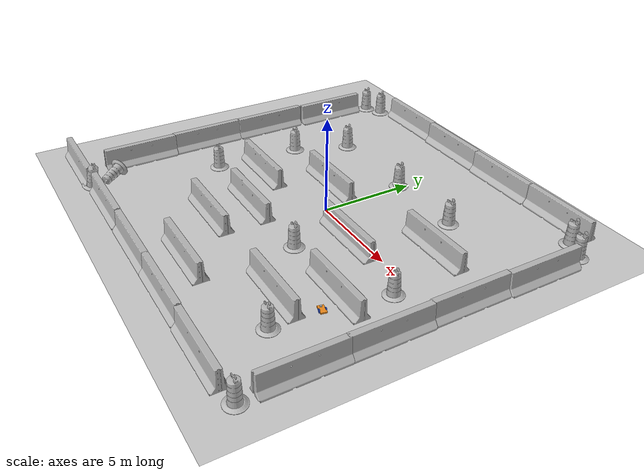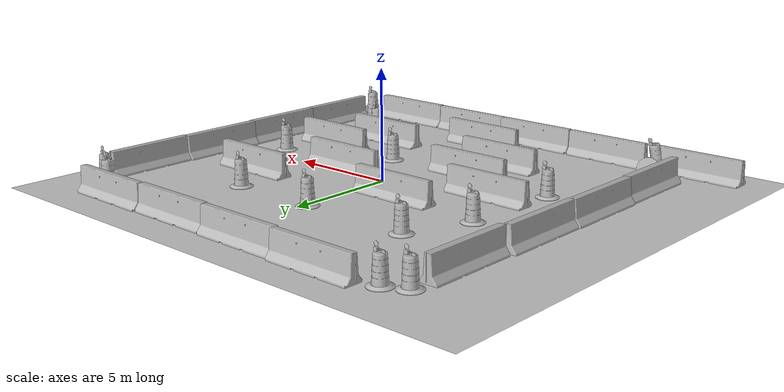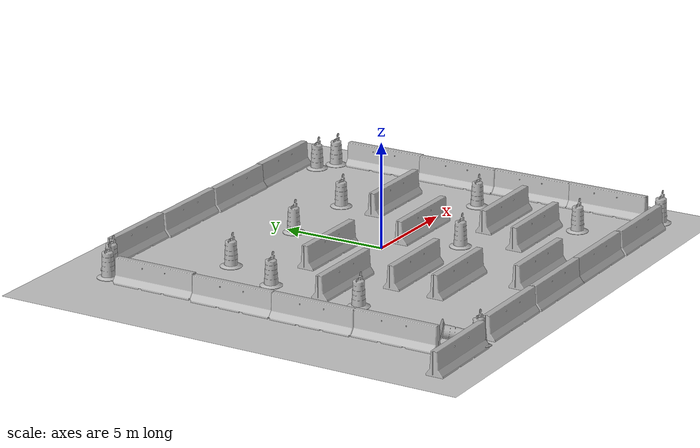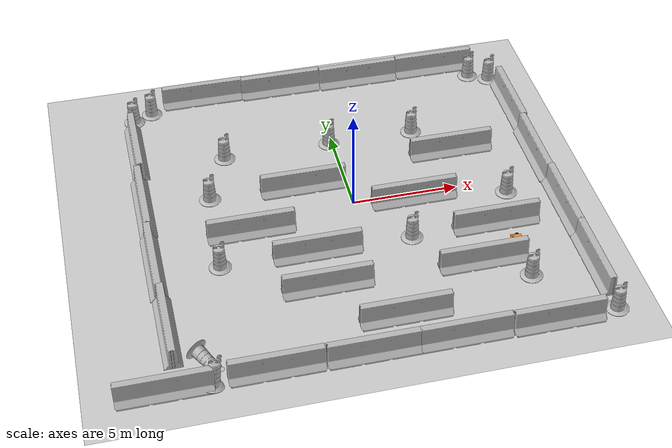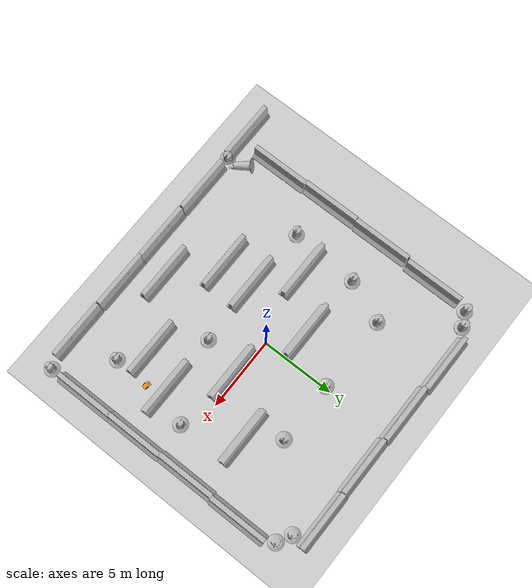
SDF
<sdf version="1.7">
 <world name="default">
  <light name="sun" type="directional">
   <pose>0 0 10 0 -0 0</pose>
   <diffuse>0.8 0.8 0.8 1</diffuse>
   <specular>0.2 0.2 0.2 1</specular>
   <attenuation>
    <range>1000</range>
    <constant>0.9</constant>
    <linear>0.01</linear>
    <quadratic>0.001</quadratic>
   </attenuation>
   <direction>-0.5 0.1 -0.9</direction>
   <spot><inner_angle>0</inner_angle><outer_angle>0</outer_angle><falloff>0</falloff></spot>
  </light>
  <model name="ground_plane">
   <static>1</static>
   <link name="link">
    <collision name="collision">
     <geometry><plane><normal>0 0 1</normal><size>100 100</size></plane></geometry>
     <surface><friction><ode><mu>100</mu><mu2>50</mu2></ode></friction></surface>
    </collision>
    <visual name="visual">
     <cast_shadows>0</cast_shadows>
     <geometry><plane><normal>0 0 1</normal><size>100 100</size></plane></geometry>
     <material>
      <script><uri>file://media/materials/scripts/gazebo.material</uri><name>Gazebo/Grey</name></script>
     </material>
    </visual>
   </link>
  </model>
  <gravity>0 0 -9.8</gravity>
  <magnetic_field>6e-06 2.3e-05 -4.2e-05</magnetic_field>
  <atmosphere type="adiabatic"/>
  <physics name="default_physics" default="0" type="ode">
   <max_step_size>0.001</max_step_size>
   <real_time_factor>1</real_time_factor>
   <real_time_update_rate>1000</real_time_update_rate>
  </physics>
  <scene><ambient>0.4 0.4 0.4 1</ambient><background>0.7 0.7 0.7 1</background><shadows>1</shadows></scene>
  <spherical_coordinates>
   <surface_model>EARTH_WGS84</surface_model>
   <latitude_deg>0</latitude_deg>
   <longitude_deg>0</longitude_deg>
   <elevation>0</elevation>
   <heading_deg>0</heading_deg>
  </spherical_coordinates>
  <model name="jersey_barrier">
   <static>1</static>
   <link name="link">
    <visual name="visual">
     <geometry><mesh><uri>model://jersey_barrier/meshes/jersey_barrier.dae</uri></mesh></geometry>
    </visual>
    <collision name="upright">
     <pose>0 0 0.5715 0 -0 0</pose>
     <geometry><box><size>4.06542 0.3063 1.143</size></box></geometry>
    </collision>
    <collision name="base">
     <pose>0 0 0.032258 0 -0 0</pose>
     <geometry><box><size>4.06542 0.8107 0.064516</size></box></geometry>
    </collision>
    <collision name="base2">
     <pose>0 0 0.1 0 -0 0</pose>
     <geometry><box><size>4.06542 0.65 0.1</size></box></geometry>
    </collision>
    <collision name="base3">
     <pose>0 0 0.2 0 -0 0</pose>
     <geometry><box><size>4.06542 0.5 0.1</size></box></geometry>
    </collision>
    <collision name="left-angle">
     <pose>0 -0.224 0.2401 0.9 -0 0</pose>
     <geometry><box><size>4.06542 0.5 0.064516</size></box></geometry>
    </collision>
    <collision name="right-angle">
     <pose>0 0.224 0.2401 -0.9 0 0</pose>
     <geometry><box><size>4.06542 0.5 0.064516</size></box></geometry>
    </collision>
   </link>
   <pose>-5.65677 9.4608 0 0 -0 0</pose>
  </model>
  <model name="jersey_barrier_clone">
   <static>1</static>
   <link name="link">
    <visual name="visual">
     <geometry><mesh><uri>model://jersey_barrier/meshes/jersey_barrier.dae</uri></mesh></geometry>
    </visual>
    <collision name="upright">
     <pose>0 0 0.5715 0 -0 0</pose>
     <geometry><box><size>4.06542 0.3063 1.143</size></box></geometry>
    </collision>
    <collision name="base">
     <pose>0 0 0.032258 0 -0 0</pose>
     <geometry><box><size>4.06542 0.8107 0.064516</size></box></geometry>
    </collision>
    <collision name="base2">
     <pose>0 0 0.1 0 -0 0</pose>
     <geometry><box><size>4.06542 0.65 0.1</size></box></geometry>
    </collision>
    <collision name="base3">
     <pose>0 0 0.2 0 -0 0</pose>
     <geometry><box><size>4.06542 0.5 0.1</size></box></geometry>
    </collision>
    <collision name="left-angle">
     <pose>0 -0.224 0.2401 0.9 -0 0</pose>
     <geometry><box><size>4.06542 0.5 0.064516</size></box></geometry>
    </collision>
    <collision name="right-angle">
     <pose>0 0.224 0.2401 -0.9 0 0</pose>
     <geometry><box><size>4.06542 0.5 0.064516</size></box></geometry>
    </collision>
   </link>
   <pose>-1.65987 9.36075 0 0 -0 0</pose>
  </model>
  <model name="jersey_barrier_clone_0">
   <static>1</static>
   <link name="link">
    <visual name="visual">
     <geometry><mesh><uri>model://jersey_barrier/meshes/jersey_barrier.dae</uri></mesh></geometry>
    </visual>
    <collision name="upright">
     <pose>0 0 0.5715 0 -0 0</pose>
     <geometry><box><size>4.06542 0.3063 1.143</size></box></geometry>
    </collision>
    <collision name="base">
     <pose>0 0 0.032258 0 -0 0</pose>
     <geometry><box><size>4.06542 0.8107 0.064516</size></box></geometry>
    </collision>
    <collision name="base2">
     <pose>0 0 0.1 0 -0 0</pose>
     <geometry><box><size>4.06542 0.65 0.1</size></box></geometry>
    </collision>
    <collision name="base3">
     <pose>0 0 0.2 0 -0 0</pose>
     <geometry><box><size>4.06542 0.5 0.1</size></box></geometry>
    </collision>
    <collision name="left-angle">
     <pose>0 -0.224 0.2401 0.9 -0 0</pose>
     <geometry><box><size>4.06542 0.5 0.064516</size></box></geometry>
    </collision>
    <collision name="right-angle">
     <pose>0 0.224 0.2401 -0.9 0 0</pose>
     <geometry><box><size>4.06542 0.5 0.064516</size></box></geometry>
    </collision>
   </link>
   <pose>2.39773 9.29085 0 0 -0 0</pose>
  </model>
  <model name="jersey_barrier_clone_1">
   <static>1</static>
   <link name="link">
    <visual name="visual">
     <geometry><mesh><uri>model://jersey_barrier/meshes/jersey_barrier.dae</uri></mesh></geometry>
    </visual>
    <collision name="upright">
     <pose>0 0 0.5715 0 -0 0</pose>
     <geometry><box><size>4.06542 0.3063 1.143</size></box></geometry>
    </collision>
    <collision name="base">
     <pose>0 0 0.032258 0 -0 0</pose>
     <geometry><box><size>4.06542 0.8107 0.064516</size></box></geometry>
    </collision>
    <collision name="base2">
     <pose>0 0 0.1 0 -0 0</pose>
     <geometry><box><size>4.06542 0.65 0.1</size></box></geometry>
    </collision>
    <collision name="base3">
     <pose>0 0 0.2 0 -0 0</pose>
     <geometry><box><size>4.06542 0.5 0.1</size></box></geometry>
    </collision>
    <collision name="left-angle">
     <pose>0 -0.224 0.2401 0.9 -0 0</pose>
     <geometry><box><size>4.06542 0.5 0.064516</size></box></geometry>
    </collision>
    <collision name="right-angle">
     <pose>0 0.224 0.2401 -0.9 0 0</pose>
     <geometry><box><size>4.06542 0.5 0.064516</size></box></geometry>
    </collision>
   </link>
   <pose>6.45464 9.33993 0 0 -0 0</pose>
  </model>
  <model name="jersey_barrier_clone_3">
   <static>1</static>
   <link name="link">
    <visual name="visual">
     <geometry><mesh><uri>model://jersey_barrier/meshes/jersey_barrier.dae</uri></mesh></geometry>
    </visual>
    <collision name="upright">
     <pose>0 0 0.5715 0 -0 0</pose>
     <geometry><box><size>4.06542 0.3063 1.143</size></box></geometry>
    </collision>
    <collision name="base">
     <pose>0 0 0.032258 0 -0 0</pose>
     <geometry><box><size>4.06542 0.8107 0.064516</size></box></geometry>
    </collision>
    <collision name="base2">
     <pose>0 0 0.1 0 -0 0</pose>
     <geometry><box><size>4.06542 0.65 0.1</size></box></geometry>
    </collision>
    <collision name="base3">
     <pose>0 0 0.2 0 -0 0</pose>
     <geometry><box><size>4.06542 0.5 0.1</size></box></geometry>
    </collision>
    <collision name="left-angle">
     <pose>0 -0.224 0.2401 0.9 -0 0</pose>
     <geometry><box><size>4.06542 0.5 0.064516</size></box></geometry>
    </collision>
    <collision name="right-angle">
     <pose>0 0.224 0.2401 -0.9 0 0</pose>
     <geometry><box><size>4.06542 0.5 0.064516</size></box></geometry>
    </collision>
   </link>
   <pose>9.44656 5.35522 0 0 0 -1.56865</pose>
  </model>
  <model name="jersey_barrier_clone_3_clone">
   <static>1</static>
   <link name="link">
    <visual name="visual">
     <geometry><mesh><uri>model://jersey_barrier/meshes/jersey_barrier.dae</uri></mesh></geometry>
    </visual>
    <collision name="upright">
     <pose>0 0 0.5715 0 -0 0</pose>
     <geometry><box><size>4.06542 0.3063 1.143</size></box></geometry>
    </collision>
    <collision name="base">
     <pose>0 0 0.032258 0 -0 0</pose>
     <geometry><box><size>4.06542 0.8107 0.064516</size></box></geometry>
    </collision>
    <collision name="base2">
     <pose>0 0 0.1 0 -0 0</pose>
     <geometry><box><size>4.06542 0.65 0.1</size></box></geometry>
    </collision>
    <collision name="base3">
     <pose>0 0 0.2 0 -0 0</pose>
     <geometry><box><size>4.06542 0.5 0.1</size></box></geometry>
    </collision>
    <collision name="left-angle">
     <pose>0 -0.224 0.2401 0.9 -0 0</pose>
     <geometry><box><size>4.06542 0.5 0.064516</size></box></geometry>
    </collision>
    <collision name="right-angle">
     <pose>0 0.224 0.2401 -0.9 0 0</pose>
     <geometry><box><size>4.06542 0.5 0.064516</size></box></geometry>
    </collision>
   </link>
   <pose>9.3727 1.33119 0 0 0 -1.56865</pose>
  </model>
  <model name="jersey_barrier_clone_3_clone_0">
   <static>1</static>
   <link name="link">
    <visual name="visual">
     <geometry><mesh><uri>model://jersey_barrier/meshes/jersey_barrier.dae</uri></mesh></geometry>
    </visual>
    <collision name="upright">
     <pose>0 0 0.5715 0 -0 0</pose>
     <geometry><box><size>4.06542 0.3063 1.143</size></box></geometry>
    </collision>
    <collision name="base">
     <pose>0 0 0.032258 0 -0 0</pose>
     <geometry><box><size>4.06542 0.8107 0.064516</size></box></geometry>
    </collision>
    <collision name="base2">
     <pose>0 0 0.1 0 -0 0</pose>
     <geometry><box><size>4.06542 0.65 0.1</size></box></geometry>
    </collision>
    <collision name="base3">
     <pose>0 0 0.2 0 -0 0</pose>
     <geometry><box><size>4.06542 0.5 0.1</size></box></geometry>
    </collision>
    <collision name="left-angle">
     <pose>0 -0.224 0.2401 0.9 -0 0</pose>
     <geometry><box><size>4.06542 0.5 0.064516</size></box></geometry>
    </collision>
    <collision name="right-angle">
     <pose>0 0.224 0.2401 -0.9 0 0</pose>
     <geometry><box><size>4.06542 0.5 0.064516</size></box></geometry>
    </collision>
   </link>
   <pose>9.4315 -2.6268 0 0 0 -1.56865</pose>
  </model>
  <model name="jersey_barrier_clone_3_clone_1">
   <static>1</static>
   <link name="link">
    <visual name="visual">
     <geometry><mesh><uri>model://jersey_barrier/meshes/jersey_barrier.dae</uri></mesh></geometry>
    </visual>
    <collision name="upright">
     <pose>0 0 0.5715 0 -0 0</pose>
     <geometry><box><size>4.06542 0.3063 1.143</size></box></geometry>
    </collision>
    <collision name="base">
     <pose>0 0 0.032258 0 -0 0</pose>
     <geometry><box><size>4.06542 0.8107 0.064516</size></box></geometry>
    </collision>
    <collision name="base2">
     <pose>0 0 0.1 0 -0 0</pose>
     <geometry><box><size>4.06542 0.65 0.1</size></box></geometry>
    </collision>
    <collision name="base3">
     <pose>0 0 0.2 0 -0 0</pose>
     <geometry><box><size>4.06542 0.5 0.1</size></box></geometry>
    </collision>
    <collision name="left-angle">
     <pose>0 -0.224 0.2401 0.9 -0 0</pose>
     <geometry><box><size>4.06542 0.5 0.064516</size></box></geometry>
    </collision>
    <collision name="right-angle">
     <pose>0 0.224 0.2401 -0.9 0 0</pose>
     <geometry><box><size>4.06542 0.5 0.064516</size></box></geometry>
    </collision>
   </link>
   <pose>9.44969 -6.53485 0 0 0 -1.56865</pose>
  </model>
  <model name="jersey_barrier_clone_2_clone">
   <static>1</static>
   <link name="link">
    <visual name="visual">
     <geometry><mesh><uri>model://jersey_barrier/meshes/jersey_barrier.dae</uri></mesh></geometry>
    </visual>
    <collision name="upright">
     <pose>0 0 0.5715 0 -0 0</pose>
     <geometry><box><size>4.06542 0.3063 1.143</size></box></geometry>
    </collision>
    <collision name="base">
     <pose>0 0 0.032258 0 -0 0</pose>
     <geometry><box><size>4.06542 0.8107 0.064516</size></box></geometry>
    </collision>
    <collision name="base2">
     <pose>0 0 0.1 0 -0 0</pose>
     <geometry><box><size>4.06542 0.65 0.1</size></box></geometry>
    </collision>
    <collision name="base3">
     <pose>0 0 0.2 0 -0 0</pose>
     <geometry><box><size>4.06542 0.5 0.1</size></box></geometry>
    </collision>
    <collision name="left-angle">
     <pose>0 -0.224 0.2401 0.9 -0 0</pose>
     <geometry><box><size>4.06542 0.5 0.064516</size></box></geometry>
    </collision>
    <collision name="right-angle">
     <pose>0 0.224 0.2401 -0.9 0 0</pose>
     <geometry><box><size>4.06542 0.5 0.064516</size></box></geometry>
    </collision>
   </link>
   <pose>6.70657 -9.54347 0 0 -0 0</pose>
  </model>
  <model name="jersey_barrier_clone_2_clone_0">
   <static>1</static>
   <link name="link">
    <visual name="visual">
     <geometry><mesh><uri>model://jersey_barrier/meshes/jersey_barrier.dae</uri></mesh></geometry>
    </visual>
    <collision name="upright">
     <pose>0 0 0.5715 0 -0 0</pose>
     <geometry><box><size>4.06542 0.3063 1.143</size></box></geometry>
    </collision>
    <collision name="base">
     <pose>0 0 0.032258 0 -0 0</pose>
     <geometry><box><size>4.06542 0.8107 0.064516</size></box></geometry>
    </collision>
    <collision name="base2">
     <pose>0 0 0.1 0 -0 0</pose>
     <geometry><box><size>4.06542 0.65 0.1</size></box></geometry>
    </collision>
    <collision name="base3">
     <pose>0 0 0.2 0 -0 0</pose>
     <geometry><box><size>4.06542 0.5 0.1</size></box></geometry>
    </collision>
    <collision name="left-angle">
     <pose>0 -0.224 0.2401 0.9 -0 0</pose>
     <geometry><box><size>4.06542 0.5 0.064516</size></box></geometry>
    </collision>
    <collision name="right-angle">
     <pose>0 0.224 0.2401 -0.9 0 0</pose>
     <geometry><box><size>4.06542 0.5 0.064516</size></box></geometry>
    </collision>
   </link>
   <pose>2.59616 -9.50928 0 0 -0 0</pose>
  </model>
  <model name="jersey_barrier_clone_2_clone_1">
   <static>1</static>
   <link name="link">
    <visual name="visual">
     <geometry><mesh><uri>model://jersey_barrier/meshes/jersey_barrier.dae</uri></mesh></geometry>
    </visual>
    <collision name="upright">
     <pose>0 0 0.5715 0 -0 0</pose>
     <geometry><box><size>4.06542 0.3063 1.143</size></box></geometry>
    </collision>
    <collision name="base">
     <pose>0 0 0.032258 0 -0 0</pose>
     <geometry><box><size>4.06542 0.8107 0.064516</size></box></geometry>
    </collision>
    <collision name="base2">
     <pose>0 0 0.1 0 -0 0</pose>
     <geometry><box><size>4.06542 0.65 0.1</size></box></geometry>
    </collision>
    <collision name="base3">
     <pose>0 0 0.2 0 -0 0</pose>
     <geometry><box><size>4.06542 0.5 0.1</size></box></geometry>
    </collision>
    <collision name="left-angle">
     <pose>0 -0.224 0.2401 0.9 -0 0</pose>
     <geometry><box><size>4.06542 0.5 0.064516</size></box></geometry>
    </collision>
    <collision name="right-angle">
     <pose>0 0.224 0.2401 -0.9 0 0</pose>
     <geometry><box><size>4.06542 0.5 0.064516</size></box></geometry>
    </collision>
   </link>
   <pose>-1.33414 -9.50852 0 0 -0 0</pose>
  </model>
  <model name="jersey_barrier_clone_2_clone_2">
   <static>1</static>
   <link name="link">
    <visual name="visual">
     <geometry><mesh><uri>model://jersey_barrier/meshes/jersey_barrier.dae</uri></mesh></geometry>
    </visual>
    <collision name="upright">
     <pose>0 0 0.5715 0 -0 0</pose>
     <geometry><box><size>4.06542 0.3063 1.143</size></box></geometry>
    </collision>
    <collision name="base">
     <pose>0 0 0.032258 0 -0 0</pose>
     <geometry><box><size>4.06542 0.8107 0.064516</size></box></geometry>
    </collision>
    <collision name="base2">
     <pose>0 0 0.1 0 -0 0</pose>
     <geometry><box><size>4.06542 0.65 0.1</size></box></geometry>
    </collision>
    <collision name="base3">
     <pose>0 0 0.2 0 -0 0</pose>
     <geometry><box><size>4.06542 0.5 0.1</size></box></geometry>
    </collision>
    <collision name="left-angle">
     <pose>0 -0.224 0.2401 0.9 -0 0</pose>
     <geometry><box><size>4.06542 0.5 0.064516</size></box></geometry>
    </collision>
    <collision name="right-angle">
     <pose>0 0.224 0.2401 -0.9 0 0</pose>
     <geometry><box><size>4.06542 0.5 0.064516</size></box></geometry>
    </collision>
   </link>
   <pose>-5.44605 -9.49634 0 0 -0 0</pose>
  </model>
  <model name="jersey_barrier_clone_3_clone_1_clone">
   <static>1</static>
   <link name="link">
    <visual name="visual">
     <geometry><mesh><uri>model://jersey_barrier/meshes/jersey_barrier.dae</uri></mesh></geometry>
    </visual>
    <collision name="upright">
     <pose>0 0 0.5715 0 -0 0</pose>
     <geometry><box><size>4.06542 0.3063 1.143</size></box></geometry>
    </collision>
    <collision name="base">
     <pose>0 0 0.032258 0 -0 0</pose>
     <geometry><box><size>4.06542 0.8107 0.064516</size></box></geometry>
    </collision>
    <collision name="base2">
     <pose>0 0 0.1 0 -0 0</pose>
     <geometry><box><size>4.06542 0.65 0.1</size></box></geometry>
    </collision>
    <collision name="base3">
     <pose>0 0 0.2 0 -0 0</pose>
     <geometry><box><size>4.06542 0.5 0.1</size></box></geometry>
    </collision>
    <collision name="left-angle">
     <pose>0 -0.224 0.2401 0.9 -0 0</pose>
     <geometry><box><size>4.06542 0.5 0.064516</size></box></geometry>
    </collision>
    <collision name="right-angle">
     <pose>0 0.224 0.2401 -0.9 0 0</pose>
     <geometry><box><size>4.06542 0.5 0.064516</size></box></geometry>
    </collision>
   </link>
   <pose>-9.54289 -6.33149 0 0 0 -1.56865</pose>
  </model>
  <model name="jersey_barrier_clone_3_clone_1_clone_0">
   <static>1</static>
   <link name="link">
    <visual name="visual">
     <geometry><mesh><uri>model://jersey_barrier/meshes/jersey_barrier.dae</uri></mesh></geometry>
    </visual>
    <collision name="upright">
     <pose>0 0 0.5715 0 -0 0</pose>
     <geometry><box><size>4.06542 0.3063 1.143</size></box></geometry>
    </collision>
    <collision name="base">
     <pose>0 0 0.032258 0 -0 0</pose>
     <geometry><box><size>4.06542 0.8107 0.064516</size></box></geometry>
    </collision>
    <collision name="base2">
     <pose>0 0 0.1 0 -0 0</pose>
     <geometry><box><size>4.06542 0.65 0.1</size></box></geometry>
    </collision>
    <collision name="base3">
     <pose>0 0 0.2 0 -0 0</pose>
     <geometry><box><size>4.06542 0.5 0.1</size></box></geometry>
    </collision>
    <collision name="left-angle">
     <pose>0 -0.224 0.2401 0.9 -0 0</pose>
     <geometry><box><size>4.06542 0.5 0.064516</size></box></geometry>
    </collision>
    <collision name="right-angle">
     <pose>0 0.224 0.2401 -0.9 0 0</pose>
     <geometry><box><size>4.06542 0.5 0.064516</size></box></geometry>
    </collision>
   </link>
   <pose>-9.6221 -2.35336 0 0 0 -1.56865</pose>
  </model>
  <model name="jersey_barrier_clone_3_clone_1_clone_1">
   <static>1</static>
   <link name="link">
    <visual name="visual">
     <geometry><mesh><uri>model://jersey_barrier/meshes/jersey_barrier.dae</uri></mesh></geometry>
    </visual>
    <collision name="upright">
     <pose>0 0 0.5715 0 -0 0</pose>
     <geometry><box><size>4.06542 0.3063 1.143</size></box></geometry>
    </collision>
    <collision name="base">
     <pose>0 0 0.032258 0 -0 0</pose>
     <geometry><box><size>4.06542 0.8107 0.064516</size></box></geometry>
    </collision>
    <collision name="base2">
     <pose>0 0 0.1 0 -0 0</pose>
     <geometry><box><size>4.06542 0.65 0.1</size></box></geometry>
    </collision>
    <collision name="base3">
     <pose>0 0 0.2 0 -0 0</pose>
     <geometry><box><size>4.06542 0.5 0.1</size></box></geometry>
    </collision>
    <collision name="left-angle">
     <pose>0 -0.224 0.2401 0.9 -0 0</pose>
     <geometry><box><size>4.06542 0.5 0.064516</size></box></geometry>
    </collision>
    <collision name="right-angle">
     <pose>0 0.224 0.2401 -0.9 0 0</pose>
     <geometry><box><size>4.06542 0.5 0.064516</size></box></geometry>
    </collision>
   </link>
   <pose>-9.58952 1.69745 0 0 0 -1.56865</pose>
  </model>
  <model name="jersey_barrier_clone_3_clone_1_clone_2">
   <static>1</static>
   <link name="link">
    <visual name="visual">
     <geometry><mesh><uri>model://jersey_barrier/meshes/jersey_barrier.dae</uri></mesh></geometry>
    </visual>
    <collision name="upright">
     <pose>0 0 0.5715 0 -0 0</pose>
     <geometry><box><size>4.06542 0.3063 1.143</size></box></geometry>
    </collision>
    <collision name="base">
     <pose>0 0 0.032258 0 -0 0</pose>
     <geometry><box><size>4.06542 0.8107 0.064516</size></box></geometry>
    </collision>
    <collision name="base2">
     <pose>0 0 0.1 0 -0 0</pose>
     <geometry><box><size>4.06542 0.65 0.1</size></box></geometry>
    </collision>
    <collision name="base3">
     <pose>0 0 0.2 0 -0 0</pose>
     <geometry><box><size>4.06542 0.5 0.1</size></box></geometry>
    </collision>
    <collision name="left-angle">
     <pose>0 -0.224 0.2401 0.9 -0 0</pose>
     <geometry><box><size>4.06542 0.5 0.064516</size></box></geometry>
    </collision>
    <collision name="right-angle">
     <pose>0 0.224 0.2401 -0.9 0 0</pose>
     <geometry><box><size>4.06542 0.5 0.064516</size></box></geometry>
    </collision>
   </link>
   <pose>-9.44715 5.83721 0 0 0 -1.56865</pose>
  </model>
  <model name="Construction Barrel">
   <link name="link">
    <inertial>
     <pose>0 0 0.4 0 -0 0</pose>
     <mass>500</mass>
     <inertia><ixx>51.2096</ixx><iyy>51.2096</iyy><izz>25</izz><ixy>0</ixy><ixz>0</ixz><iyz>0</iyz></inertia>
    </inertial>
    <collision name="collision">
     <geometry><mesh><uri>model://construction_barrel/meshes/construction_barrel.dae</uri></mesh></geometry>
    </collision>
    <visual name="visual">
     <geometry><mesh><uri>model://construction_barrel/meshes/construction_barrel.dae</uri></mesh></geometry>
    </visual>
   </link>
   <pose>9.07433 7.91046 -1e-06 3e-06 -0 -6.5e-05</pose>
  </model>
  <model name="Construction Barrel_0">
   <link name="link">
    <inertial>
     <pose>0 0 0.4 0 -0 0</pose>
     <mass>500</mass>
     <inertia><ixx>51.2096</ixx><iyy>51.2096</iyy><izz>25</izz><ixy>0</ixy><ixz>0</ixz><iyz>0</iyz></inertia>
    </inertial>
    <collision name="collision">
     <geometry><mesh><uri>model://construction_barrel/meshes/construction_barrel.dae</uri></mesh></geometry>
    </collision>
    <visual name="visual">
     <geometry><mesh><uri>model://construction_barrel/meshes/construction_barrel.dae</uri></mesh></geometry>
    </visual>
   </link>
   <pose>8.12817 8.41627 -1e-06 3e-06 -0 -6e-05</pose>
  </model>
  <model name="Construction Barrel_1">
   <link name="link">
    <inertial>
     <pose>0 0 0.4 0 -0 0</pose>
     <mass>500</mass>
     <inertia><ixx>51.2096</ixx><iyy>51.2096</iyy><izz>25</izz><ixy>0</ixy><ixz>0</ixz><iyz>0</iyz></inertia>
    </inertial>
    <collision name="collision">
     <geometry><mesh><uri>model://construction_barrel/meshes/construction_barrel.dae</uri></mesh></geometry>
    </collision>
    <visual name="visual">
     <geometry><mesh><uri>model://construction_barrel/meshes/construction_barrel.dae</uri></mesh></geometry>
    </visual>
   </link>
   <pose>-9.27274 8.48381 -1e-06 3e-06 -0 -6e-05</pose>
  </model>
  <model name="Construction Barrel_2">
   <link name="link">
    <inertial>
     <pose>0 0 0.4 0 -0 0</pose>
     <mass>500</mass>
     <inertia><ixx>51.2096</ixx><iyy>51.2096</iyy><izz>25</izz><ixy>0</ixy><ixz>0</ixz><iyz>0</iyz></inertia>
    </inertial>
    <collision name="collision">
     <geometry><mesh><uri>model://construction_barrel/meshes/construction_barrel.dae</uri></mesh></geometry>
    </collision>
    <visual name="visual">
     <geometry><mesh><uri>model://construction_barrel/meshes/construction_barrel.dae</uri></mesh></geometry>
    </visual>
   </link>
   <pose>-8.34371 8.93844 -1e-06 3e-06 -0 -6.3e-05</pose>
  </model>
  <model name="Construction Barrel_3">
   <link name="link">
    <inertial>
     <pose>0 0 0.4 0 -0 0</pose>
     <mass>500</mass>
     <inertia><ixx>51.2096</ixx><iyy>51.2096</iyy><izz>25</izz><ixy>0</ixy><ixz>0</ixz><iyz>0</iyz></inertia>
    </inertial>
    <collision name="collision">
     <geometry><mesh><uri>model://construction_barrel/meshes/construction_barrel.dae</uri></mesh></geometry>
    </collision>
    <visual name="visual">
     <geometry><mesh><uri>model://construction_barrel/meshes/construction_barrel.dae</uri></mesh></geometry>
    </visual>
   </link>
   <pose>9.45348 -9.29442 -0 0 0 -8.4e-05</pose>
  </model>
  <model name="Construction Barrel_4">
   <link name="link">
    <inertial>
     <pose>0 0 0.4 0 -0 0</pose>
     <mass>500</mass>
     <inertia><ixx>51.2096</ixx><iyy>51.2096</iyy><izz>25</izz><ixy>0</ixy><ixz>0</ixz><iyz>0</iyz></inertia>
    </inertial>
    <collision name="collision">
     <geometry><mesh><uri>model://construction_barrel/meshes/construction_barrel.dae</uri></mesh></geometry>
    </collision>
    <visual name="visual">
     <geometry><mesh><uri>model://construction_barrel/meshes/construction_barrel.dae</uri></mesh></geometry>
    </visual>
   </link>
   <pose>-8.13685 -9.57959 0.008562 -0.141219 0.171277 0.051773</pose>
  </model>
  <model name="Construction Barrel_5">
   <link name="link">
    <inertial>
     <pose>0 0 0.4 0 -0 0</pose>
     <mass>500</mass>
     <inertia><ixx>51.2096</ixx><iyy>51.2096</iyy><izz>25</izz><ixy>0</ixy><ixz>0</ixz><iyz>0</iyz></inertia>
    </inertial>
    <collision name="collision">
     <geometry><mesh><uri>model://construction_barrel/meshes/construction_barrel.dae</uri></mesh></geometry>
    </collision>
    <visual name="visual">
     <geometry><mesh><uri>model://construction_barrel/meshes/construction_barrel.dae</uri></mesh></geometry>
    </visual>
   </link>
   <pose>-8.53343 -7.89021 0.497934 1.80685 -0.382857 0.481336</pose>
  </model>
  <model name="jersey_barrier_0_clone_1">
   <static>1</static>
   <link name="link">
    <visual name="visual">
     <geometry><mesh><uri>model://jersey_barrier/meshes/jersey_barrier.dae</uri></mesh></geometry>
    </visual>
    <collision name="upright">
     <pose>0 0 0.5715 0 -0 0</pose>
     <geometry><box><size>4.06542 0.3063 1.143</size></box></geometry>
    </collision>
    <collision name="base">
     <pose>0 0 0.032258 0 -0 0</pose>
     <geometry><box><size>4.06542 0.8107 0.064516</size></box></geometry>
    </collision>
    <collision name="base2">
     <pose>0 0 0.1 0 -0 0</pose>
     <geometry><box><size>4.06542 0.65 0.1</size></box></geometry>
    </collision>
    <collision name="base3">
     <pose>0 0 0.2 0 -0 0</pose>
     <geometry><box><size>4.06542 0.5 0.1</size></box></geometry>
    </collision>
    <collision name="left-angle">
     <pose>0 -0.224 0.2401 0.9 -0 0</pose>
     <geometry><box><size>4.06542 0.5 0.064516</size></box></geometry>
    </collision>
    <collision name="right-angle">
     <pose>0 0.224 0.2401 -0.9 0 0</pose>
     <geometry><box><size>4.06542 0.5 0.064516</size></box></geometry>
    </collision>
   </link>
   <pose>4.6849 -5.291 0 0 -0 0</pose>
  </model>
  <model name="jersey_barrier_0_clone_1_clone">
   <static>1</static>
   <link name="link">
    <visual name="visual">
     <geometry><mesh><uri>model://jersey_barrier/meshes/jersey_barrier.dae</uri></mesh></geometry>
    </visual>
    <collision name="upright">
     <pose>0 0 0.5715 0 -0 0</pose>
     <geometry><box><size>4.06542 0.3063 1.143</size></box></geometry>
    </collision>
    <collision name="base">
     <pose>0 0 0.032258 0 -0 0</pose>
     <geometry><box><size>4.06542 0.8107 0.064516</size></box></geometry>
    </collision>
    <collision name="base2">
     <pose>0 0 0.1 0 -0 0</pose>
     <geometry><box><size>4.06542 0.65 0.1</size></box></geometry>
    </collision>
    <collision name="base3">
     <pose>0 0 0.2 0 -0 0</pose>
     <geometry><box><size>4.06542 0.5 0.1</size></box></geometry>
    </collision>
    <collision name="left-angle">
     <pose>0 -0.224 0.2401 0.9 -0 0</pose>
     <geometry><box><size>4.06542 0.5 0.064516</size></box></geometry>
    </collision>
    <collision name="right-angle">
     <pose>0 0.224 0.2401 -0.9 0 0</pose>
     <geometry><box><size>4.06542 0.5 0.064516</size></box></geometry>
    </collision>
   </link>
   <pose>-2.36998 -5.23455 0 0 -0 0</pose>
  </model>
  <model name="m2wr">
   <link name="link_chassis">
    <inertial>
     <pose>0.025 0 0.091667 0 -0 0</pose>
     <mass>6</mass>
     <inertia>
      <ixx>0.0430833</ixx>
      <ixy>0</ixy>
      <ixz>0.00625</ixz>
      <iyy>0.1285</iyy>
      <iyz>0</iyz>
      <izz>0.126208</izz>
     </inertia>
    </inertial>
    <collision name="link_chassis_fixed_joint_lump__collision_chassis_collision">
     <geometry><box><size>0.5 0.3 0.07</size></box></geometry>
    </collision>
    <collision name="link_chassis_fixed_joint_lump__caster_front_collision_collision_1">
     <pose>0.35 0 -0.05 0 -0 0</pose>
     <geometry><sphere><radius>0.05</radius></sphere></geometry>
    </collision>
    <collision name="link_chassis_fixed_joint_lump__sensor_laser_collision_2">
     <pose>0.15 0 0.05 0 -0 0</pose>
     <geometry><cylinder><length>0.1</length><radius>0.05</radius></cylinder></geometry>
    </collision>
    <visual name="link_chassis_visual">
     <geometry><box><size>0.5 0.3 0.07</size></box></geometry>
     <material>
      <script><name>Gazebo/Orange</name><uri>file://media/materials/scripts/gazebo.material</uri></script>
     </material>
    </visual>
    <visual name="link_chassis_fixed_joint_lump__caster_front_visual_visual_1">
     <pose>0.2 0 -0.05 0 -0 0</pose>
     <geometry><sphere><radius>0.05</radius></sphere></geometry>
    </visual>
    <visual name="link_chassis_fixed_joint_lump__sensor_laser_visual_2">
     <pose>0.15 0 0.05 0 -0 0</pose>
     <geometry><cylinder><length>0.1</length><radius>0.05</radius></cylinder></geometry>
    </visual>
    <sensor name="head_hokuyo_sensor" type="ray">
     <visualize>0</visualize>
     <update_rate>20</update_rate>
     <ray>
      <scan>
       <horizontal>
        <samples>720</samples>
        <resolution>1</resolution>
        <min_angle>-1.5708</min_angle>
        <max_angle>1.5708</max_angle>
       </horizontal>
       <vertical><samples>1</samples><min_angle>0</min_angle><max_angle>0</max_angle></vertical>
      </scan>
      <range><min>0.1</min><max>10</max><resolution>0.01</resolution></range>
      <noise><type>gaussian</type><mean>0</mean><stddev>0.01</stddev></noise>
     </ray>
     <plugin name="gazebo_ros_head_hokuyo_controller" filename="libgazebo_ros_laser.so">
      <topicName>/m2wr/laser/scan</topicName>
      <frameName>sensor_laser</frameName>
      <robotNamespace>/</robotNamespace>
     </plugin>
     <pose>0.15 0 0.05 0 -0 0</pose>
    </sensor>
   </link>
   <joint name="joint_left_wheel" type="revolute">
    <pose relative_to="link_chassis">-0.05 -0.15 0 0 -0 0</pose>
    <parent>link_chassis</parent>
    <child>link_left_wheel</child>
    <axis>
     <xyz>0 1 0</xyz>
     <limit><effort>10000</effort><velocity>1000</velocity><lower>-1e+16</lower><upper>1e+16</upper></limit>
     <dynamics><spring_reference>0</spring_reference><spring_stiffness>0</spring_stiffness></dynamics>
    </axis>
   </joint>
   <link name="link_left_wheel">
    <pose relative_to="joint_left_wheel">0 0 0 0 -0 0</pose>
    <inertial>
     <pose>0 0 0 -0 1.5707 1.5707</pose>
     <mass>0.2</mass>
     <inertia>
      <ixx>0.000526667</ixx>
      <ixy>0</ixy>
      <ixz>0</ixz>
      <iyy>0.000526667</iyy>
      <iyz>0</iyz>
      <izz>0.001</izz>
     </inertia>
    </inertial>
    <collision name="link_left_wheel_fixed_joint_lump__link_right_wheel_collision_collision">
     <pose>0 0 0 1.57089 1.57079 -3.14159</pose>
     <geometry><cylinder><length>0.04</length><radius>0.1</radius></cylinder></geometry>
    </collision>
    <visual name="link_left_wheel_visual_visual">
     <pose>0 0 0 1.57089 1.57079 -3.14159</pose>
     <geometry><cylinder><length>0.04</length><radius>0.1</radius></cylinder></geometry>
     <material>
      <script><name>Gazebo/Blue</name><uri>file://media/materials/scripts/gazebo.material</uri></script>
     </material>
    </visual>
   </link>
   <joint name="joint_right_wheel" type="revolute">
    <pose relative_to="link_chassis">-0.05 0.15 0 0 -0 0</pose>
    <parent>link_chassis</parent>
    <child>link_right_wheel</child>
    <axis>
     <xyz>0 1 0</xyz>
     <limit><effort>10000</effort><velocity>1000</velocity><lower>-1e+16</lower><upper>1e+16</upper></limit>
     <dynamics><spring_reference>0</spring_reference><spring_stiffness>0</spring_stiffness></dynamics>
    </axis>
   </joint>
   <link name="link_right_wheel">
    <pose relative_to="joint_right_wheel">0 0 0 0 -0 0</pose>
    <inertial>
     <pose>0 0 0 -0 1.5707 1.5707</pose>
     <mass>0.2</mass>
     <inertia>
      <ixx>0.000526667</ixx>
      <ixy>0</ixy>
      <ixz>0</ixz>
      <iyy>0.000526667</iyy>
      <iyz>0</iyz>
      <izz>0.001</izz>
     </inertia>
    </inertial>
    <collision name="link_right_wheel_collision_collision">
     <pose>0 0 0 1.57089 1.57079 -3.14159</pose>
     <geometry><cylinder><length>0.04</length><radius>0.1</radius></cylinder></geometry>
    </collision>
    <visual name="link_right_wheel_visual_visual">
     <pose>0 0 0 1.57089 1.57079 -3.14159</pose>
     <geometry><cylinder><length>0.04</length><radius>0.1</radius></cylinder></geometry>
     <material>
      <script><name>Gazebo/Blue</name><uri>file://media/materials/scripts/gazebo.material</uri></script>
     </material>
    </visual>
   </link>
   <static>0</static>
   <plugin name="differential_drive_controller" filename="libgazebo_ros_diff_drive.so">
    <legacyMode>1</legacyMode>
    <alwaysOn>1</alwaysOn>
    <updateRate>20</updateRate>
    <leftJoint>joint_left_wheel</leftJoint>
    <rightJoint>joint_right_wheel</rightJoint>
    <wheelSeparation>0.3</wheelSeparation>
    <wheelDiameter>0.2</wheelDiameter>
    <torque>0.1</torque>
    <commandTopic>cmd_vel</commandTopic>
    <odometryTopic>odom</odometryTopic>
    <odometryFrame>odom</odometryFrame>
    <robotBaseFrame>link_chassis</robotBaseFrame>
    <robotNamespace>/</robotNamespace>
   </plugin>
   <pose>6.62361 -4.08709 0.100003 1.4e-05 1e-05 2.95866</pose>
  </model>
  <model name="jersey_barrier_0_clone_clone_clone_clone">
   <static>1</static>
   <link name="link">
    <visual name="visual">
     <geometry><mesh><uri>model://jersey_barrier/meshes/jersey_barrier.dae</uri></mesh></geometry>
    </visual>
    <collision name="upright">
     <pose>0 0 0.5715 0 -0 0</pose>
     <geometry><box><size>4.06542 0.3063 1.143</size></box></geometry>
    </collision>
    <collision name="base">
     <pose>0 0 0.032258 0 -0 0</pose>
     <geometry><box><size>4.06542 0.8107 0.064516</size></box></geometry>
    </collision>
    <collision name="base2">
     <pose>0 0 0.1 0 -0 0</pose>
     <geometry><box><size>4.06542 0.65 0.1</size></box></geometry>
    </collision>
    <collision name="base3">
     <pose>0 0 0.2 0 -0 0</pose>
     <geometry><box><size>4.06542 0.5 0.1</size></box></geometry>
    </collision>
    <collision name="left-angle">
     <pose>0 -0.224 0.2401 0.9 -0 0</pose>
     <geometry><box><size>4.06542 0.5 0.064516</size></box></geometry>
    </collision>
    <collision name="right-angle">
     <pose>0 0.224 0.2401 -0.9 0 0</pose>
     <geometry><box><size>4.06542 0.5 0.064516</size></box></geometry>
    </collision>
   </link>
   <pose>5.46232 2.56832 0 0 -0 0</pose>
  </model>
  <model name="jersey_barrier_0_clone_clone_clone_clone_clone">
   <static>1</static>
   <link name="link">
    <visual name="visual">
     <geometry><mesh><uri>model://jersey_barrier/meshes/jersey_barrier.dae</uri></mesh></geometry>
    </visual>
    <collision name="upright">
     <pose>0 0 0.5715 0 -0 0</pose>
     <geometry><box><size>4.06542 0.3063 1.143</size></box></geometry>
    </collision>
    <collision name="base">
     <pose>0 0 0.032258 0 -0 0</pose>
     <geometry><box><size>4.06542 0.8107 0.064516</size></box></geometry>
    </collision>
    <collision name="base2">
     <pose>0 0 0.1 0 -0 0</pose>
     <geometry><box><size>4.06542 0.65 0.1</size></box></geometry>
    </collision>
    <collision name="base3">
     <pose>0 0 0.2 0 -0 0</pose>
     <geometry><box><size>4.06542 0.5 0.1</size></box></geometry>
    </collision>
    <collision name="left-angle">
     <pose>0 -0.224 0.2401 0.9 -0 0</pose>
     <geometry><box><size>4.06542 0.5 0.064516</size></box></geometry>
    </collision>
    <collision name="right-angle">
     <pose>0 0.224 0.2401 -0.9 0 0</pose>
     <geometry><box><size>4.06542 0.5 0.064516</size></box></geometry>
    </collision>
   </link>
   <pose>-2.07087 1.52732 0 0 -0 0</pose>
  </model>
  <model name="jersey_barrier_0_clone_clone_clone_clone_clone_clone">
   <static>1</static>
   <link name="link">
    <visual name="visual">
     <geometry><mesh><uri>model://jersey_barrier/meshes/jersey_barrier.dae</uri></mesh></geometry>
    </visual>
    <collision name="upright">
     <pose>0 0 0.5715 0 -0 0</pose>
     <geometry><box><size>4.06542 0.3063 1.143</size></box></geometry>
    </collision>
    <collision name="base">
     <pose>0 0 0.032258 0 -0 0</pose>
     <geometry><box><size>4.06542 0.8107 0.064516</size></box></geometry>
    </collision>
    <collision name="base2">
     <pose>0 0 0.1 0 -0 0</pose>
     <geometry><box><size>4.06542 0.65 0.1</size></box></geometry>
    </collision>
    <collision name="base3">
     <pose>0 0 0.2 0 -0 0</pose>
     <geometry><box><size>4.06542 0.5 0.1</size></box></geometry>
    </collision>
    <collision name="left-angle">
     <pose>0 -0.224 0.2401 0.9 -0 0</pose>
     <geometry><box><size>4.06542 0.5 0.064516</size></box></geometry>
    </collision>
    <collision name="right-angle">
     <pose>0 0.224 0.2401 -0.9 0 0</pose>
     <geometry><box><size>4.06542 0.5 0.064516</size></box></geometry>
    </collision>
   </link>
   <pose>2.80623 -0.434692 0 0 -0 0</pose>
  </model>
  <model name="jersey_barrier_0_clone_clone_clone_clone_clone_clone_clone">
   <static>1</static>
   <link name="link">
    <visual name="visual">
     <geometry><mesh><uri>model://jersey_barrier/meshes/jersey_barrier.dae</uri></mesh></geometry>
    </visual>
    <collision name="upright">
     <pose>0 0 0.5715 0 -0 0</pose>
     <geometry><box><size>4.06542 0.3063 1.143</size></box></geometry>
    </collision>
    <collision name="base">
     <pose>0 0 0.032258 0 -0 0</pose>
     <geometry><box><size>4.06542 0.8107 0.064516</size></box></geometry>
    </collision>
    <collision name="base2">
     <pose>0 0 0.1 0 -0 0</pose>
     <geometry><box><size>4.06542 0.65 0.1</size></box></geometry>
    </collision>
    <collision name="base3">
     <pose>0 0 0.2 0 -0 0</pose>
     <geometry><box><size>4.06542 0.5 0.1</size></box></geometry>
    </collision>
    <collision name="left-angle">
     <pose>0 -0.224 0.2401 0.9 -0 0</pose>
     <geometry><box><size>4.06542 0.5 0.064516</size></box></geometry>
    </collision>
    <collision name="right-angle">
     <pose>0 0.224 0.2401 -0.9 0 0</pose>
     <geometry><box><size>4.06542 0.5 0.064516</size></box></geometry>
    </collision>
   </link>
   <pose>-5 -1 0 0 -0 0</pose>
  </model>
  <model name="jersey_barrier_0_clone_1_clone_0">
   <static>1</static>
   <link name="link">
    <visual name="visual">
     <geometry><mesh><uri>model://jersey_barrier/meshes/jersey_barrier.dae</uri></mesh></geometry>
    </visual>
    <collision name="upright">
     <pose>0 0 0.5715 0 -0 0</pose>
     <geometry><box><size>4.06542 0.3063 1.143</size></box></geometry>
    </collision>
    <collision name="base">
     <pose>0 0 0.032258 0 -0 0</pose>
     <geometry><box><size>4.06542 0.8107 0.064516</size></box></geometry>
    </collision>
    <collision name="base2">
     <pose>0 0 0.1 0 -0 0</pose>
     <geometry><box><size>4.06542 0.65 0.1</size></box></geometry>
    </collision>
    <collision name="base3">
     <pose>0 0 0.2 0 -0 0</pose>
     <geometry><box><size>4.06542 0.5 0.1</size></box></geometry>
    </collision>
    <collision name="left-angle">
     <pose>0 -0.224 0.2401 0.9 -0 0</pose>
     <geometry><box><size>4.06542 0.5 0.064516</size></box></geometry>
    </collision>
    <collision name="right-angle">
     <pose>0 0.224 0.2401 -0.9 0 0</pose>
     <geometry><box><size>4.06542 0.5 0.064516</size></box></geometry>
    </collision>
   </link>
   <pose>6 -3 0 0 -0 0</pose>
  </model>
  <model name="jersey_barrier_0_clone_1_clone_clone">
   <static>1</static>
   <link name="link">
    <visual name="visual">
     <geometry><mesh><uri>model://jersey_barrier/meshes/jersey_barrier.dae</uri></mesh></geometry>
    </visual>
    <collision name="upright">
     <pose>0 0 0.5715 0 -0 0</pose>
     <geometry><box><size>4.06542 0.3063 1.143</size></box></geometry>
    </collision>
    <collision name="base">
     <pose>0 0 0.032258 0 -0 0</pose>
     <geometry><box><size>4.06542 0.8107 0.064516</size></box></geometry>
    </collision>
    <collision name="base2">
     <pose>0 0 0.1 0 -0 0</pose>
     <geometry><box><size>4.06542 0.65 0.1</size></box></geometry>
    </collision>
    <collision name="base3">
     <pose>0 0 0.2 0 -0 0</pose>
     <geometry><box><size>4.06542 0.5 0.1</size></box></geometry>
    </collision>
    <collision name="left-angle">
     <pose>0 -0.224 0.2401 0.9 -0 0</pose>
     <geometry><box><size>4.06542 0.5 0.064516</size></box></geometry>
    </collision>
    <collision name="right-angle">
     <pose>0 0.224 0.2401 -0.9 0 0</pose>
     <geometry><box><size>4.06542 0.5 0.064516</size></box></geometry>
    </collision>
   </link>
   <pose>-2.34816 -3.0322 0 0 -0 0</pose>
  </model>
  <model name="jersey_barrier_0_clone_1_clone_1">
   <static>1</static>
   <link name="link">
    <visual name="visual">
     <geometry><mesh><uri>model://jersey_barrier/meshes/jersey_barrier.dae</uri></mesh></geometry>
    </visual>
    <collision name="upright">
     <pose>0 0 0.5715 0 -0 0</pose>
     <geometry><box><size>4.06542 0.3063 1.143</size></box></geometry>
    </collision>
    <collision name="base">
     <pose>0 0 0.032258 0 -0 0</pose>
     <geometry><box><size>4.06542 0.8107 0.064516</size></box></geometry>
    </collision>
    <collision name="base2">
     <pose>0 0 0.1 0 -0 0</pose>
     <geometry><box><size>4.06542 0.65 0.1</size></box></geometry>
    </collision>
    <collision name="base3">
     <pose>0 0 0.2 0 -0 0</pose>
     <geometry><box><size>4.06542 0.5 0.1</size></box></geometry>
    </collision>
    <collision name="left-angle">
     <pose>0 -0.224 0.2401 0.9 -0 0</pose>
     <geometry><box><size>4.06542 0.5 0.064516</size></box></geometry>
    </collision>
    <collision name="right-angle">
     <pose>0 0.224 0.2401 -0.9 0 0</pose>
     <geometry><box><size>4.06542 0.5 0.064516</size></box></geometry>
    </collision>
   </link>
   <pose>0.48398 -7.71353 0 0 -0 0</pose>
  </model>
  <model name="jersey_barrier_0_clone_1_clone_2">
   <static>1</static>
   <link name="link">
    <visual name="visual">
     <geometry><mesh><uri>model://jersey_barrier/meshes/jersey_barrier.dae</uri></mesh></geometry>
    </visual>
    <collision name="upright">
     <pose>0 0 0.5715 0 -0 0</pose>
     <geometry><box><size>4.06542 0.3063 1.143</size></box></geometry>
    </collision>
    <collision name="base">
     <pose>0 0 0.032258 0 -0 0</pose>
     <geometry><box><size>4.06542 0.8107 0.064516</size></box></geometry>
    </collision>
    <collision name="base2">
     <pose>0 0 0.1 0 -0 0</pose>
     <geometry><box><size>4.06542 0.65 0.1</size></box></geometry>
    </collision>
    <collision name="base3">
     <pose>0 0 0.2 0 -0 0</pose>
     <geometry><box><size>4.06542 0.5 0.1</size></box></geometry>
    </collision>
    <collision name="left-angle">
     <pose>0 -0.224 0.2401 0.9 -0 0</pose>
     <geometry><box><size>4.06542 0.5 0.064516</size></box></geometry>
    </collision>
    <collision name="right-angle">
     <pose>0 0.224 0.2401 -0.9 0 0</pose>
     <geometry><box><size>4.06542 0.5 0.064516</size></box></geometry>
    </collision>
   </link>
   <pose>-10.0826 -9.6179 0 0 -0 0</pose>
  </model>
  <model name="Construction Barrel_4_clone">
   <link name="link">
    <inertial>
     <pose>0 0 0.4 0 -0 0</pose>
     <mass>500</mass>
     <inertia><ixx>51.2096</ixx><iyy>51.2096</iyy><izz>25</izz><ixy>0</ixy><ixz>0</ixz><iyz>0</iyz></inertia>
    </inertial>
    <collision name="collision">
     <geometry><mesh><uri>model://construction_barrel/meshes/construction_barrel.dae</uri></mesh></geometry>
    </collision>
    <visual name="visual">
     <geometry><mesh><uri>model://construction_barrel/meshes/construction_barrel.dae</uri></mesh></geometry>
    </visual>
   </link>
   <pose>-6.74479 -2.84349 -0 0 -0 0.027694</pose>
  </model>
  <model name="Construction Barrel_4_clone_0">
   <link name="link">
    <inertial>
     <pose>0 0 0.4 0 -0 0</pose>
     <mass>500</mass>
     <inertia><ixx>51.2096</ixx><iyy>51.2096</iyy><izz>25</izz><ixy>0</ixy><ixz>0</ixz><iyz>0</iyz></inertia>
    </inertial>
    <collision name="collision">
     <geometry><mesh><uri>model://construction_barrel/meshes/construction_barrel.dae</uri></mesh></geometry>
    </collision>
    <visual name="visual">
     <geometry><mesh><uri>model://construction_barrel/meshes/construction_barrel.dae</uri></mesh></geometry>
    </visual>
   </link>
   <pose>4.00294 4.55088 -0 0 -0 0.033243</pose>
  </model>
  <model name="Construction Barrel_4_clone_1">
   <link name="link">
    <inertial>
     <pose>0 0 0.4 0 -0 0</pose>
     <mass>500</mass>
     <inertia><ixx>51.2096</ixx><iyy>51.2096</iyy><izz>25</izz><ixy>0</ixy><ixz>0</ixz><iyz>0</iyz></inertia>
    </inertial>
    <collision name="collision">
     <geometry><mesh><uri>model://construction_barrel/meshes/construction_barrel.dae</uri></mesh></geometry>
    </collision>
    <visual name="visual">
     <geometry><mesh><uri>model://construction_barrel/meshes/construction_barrel.dae</uri></mesh></geometry>
    </visual>
   </link>
   <pose>-0.164024 4.56116 -2e-06 2e-06 7e-06 0.03286</pose>
  </model>
  <model name="Construction Barrel_4_clone_2">
   <link name="link">
    <inertial>
     <pose>0 0 0.4 0 -0 0</pose>
     <mass>500</mass>
     <inertia><ixx>51.2096</ixx><iyy>51.2096</iyy><izz>25</izz><ixy>0</ixy><ixz>0</ixz><iyz>0</iyz></inertia>
    </inertial>
    <collision name="collision">
     <geometry><mesh><uri>model://construction_barrel/meshes/construction_barrel.dae</uri></mesh></geometry>
    </collision>
    <visual name="visual">
     <geometry><mesh><uri>model://construction_barrel/meshes/construction_barrel.dae</uri></mesh></geometry>
    </visual>
   </link>
   <pose>-6.48791 1.77107 -0 0 -0 0.04017</pose>
  </model>
  <model name="Construction Barrel_4_clone_3">
   <link name="link">
    <inertial>
     <pose>0 0 0.4 0 -0 0</pose>
     <mass>500</mass>
     <inertia><ixx>51.2096</ixx><iyy>51.2096</iyy><izz>25</izz><ixy>0</ixy><ixz>0</ixz><iyz>0</iyz></inertia>
    </inertial>
    <collision name="collision">
     <geometry><mesh><uri>model://construction_barrel/meshes/construction_barrel.dae</uri></mesh></geometry>
    </collision>
    <visual name="visual">
     <geometry><mesh><uri>model://construction_barrel/meshes/construction_barrel.dae</uri></mesh></geometry>
    </visual>
   </link>
   <pose>7.19182 -0.921318 -2e-06 2e-06 7e-06 0.039652</pose>
  </model>
  <model name="Construction Barrel_4_clone_4">
   <link name="link">
    <inertial>
     <pose>0 0 0.4 0 -0 0</pose>
     <mass>500</mass>
     <inertia><ixx>51.2096</ixx><iyy>51.2096</iyy><izz>25</izz><ixy>0</ixy><ixz>0</ixz><iyz>0</iyz></inertia>
    </inertial>
    <collision name="collision">
     <geometry><mesh><uri>model://construction_barrel/meshes/construction_barrel.dae</uri></mesh></geometry>
    </collision>
    <visual name="visual">
     <geometry><mesh><uri>model://construction_barrel/meshes/construction_barrel.dae</uri></mesh></geometry>
    </visual>
   </link>
   <pose>6.52703 -6.52225 2e-06 3e-06 3e-06 0.038112</pose>
  </model>
  <model name="Construction Barrel_4_clone_5">
   <link name="link">
    <inertial>
     <pose>0 0 0.4 0 -0 0</pose>
     <mass>500</mass>
     <inertia><ixx>51.2096</ixx><iyy>51.2096</iyy><izz>25</izz><ixy>0</ixy><ixz>0</ixz><iyz>0</iyz></inertia>
    </inertial>
    <collision name="collision">
     <geometry><mesh><uri>model://construction_barrel/meshes/construction_barrel.dae</uri></mesh></geometry>
    </collision>
    <visual name="visual">
     <geometry><mesh><uri>model://construction_barrel/meshes/construction_barrel.dae</uri></mesh></geometry>
    </visual>
   </link>
   <pose>-5.33507 4.60236 -0 0 -0 0.052233</pose>
  </model>
  <model name="Construction Barrel_4_clone_6">
   <link name="link">
    <inertial>
     <pose>0 0 0.4 0 -0 0</pose>
     <mass>500</mass>
     <inertia><ixx>51.2096</ixx><iyy>51.2096</iyy><izz>25</izz><ixy>0</ixy><ixz>0</ixz><iyz>0</iyz></inertia>
    </inertial>
    <collision name="collision">
     <geometry><mesh><uri>model://construction_barrel/meshes/construction_barrel.dae</uri></mesh></geometry>
    </collision>
    <visual name="visual">
     <geometry><mesh><uri>model://construction_barrel/meshes/construction_barrel.dae</uri></mesh></geometry>
    </visual>
   </link>
   <pose>2.05032 -2.91491 -1e-06 3e-06 -2e-06 0.059203</pose>
  </model>
 </world>
</sdf>
